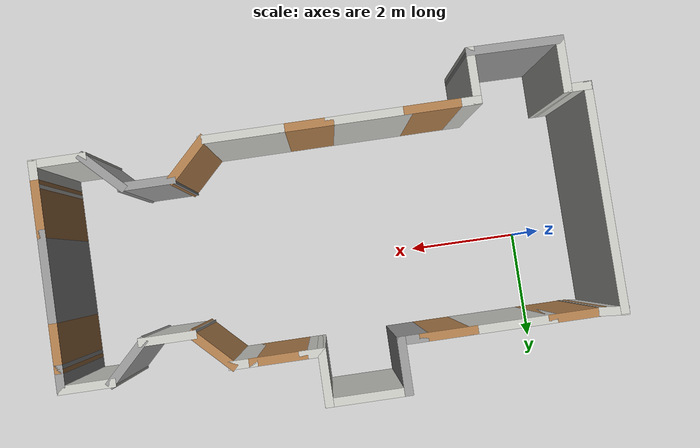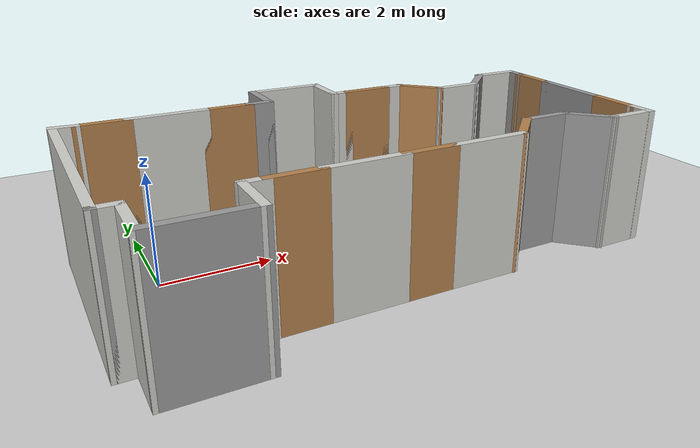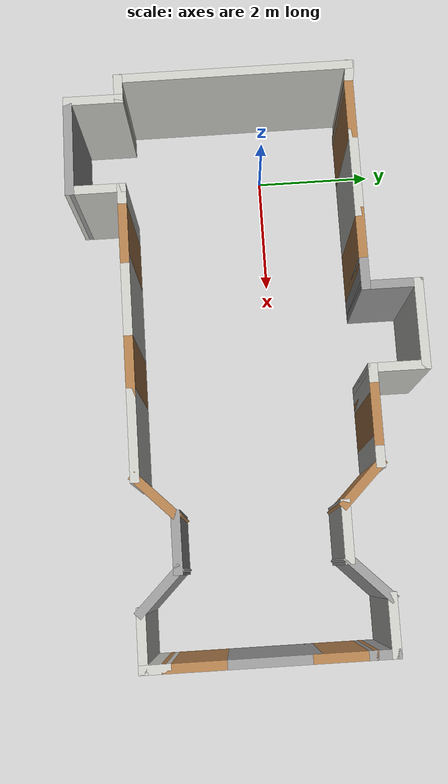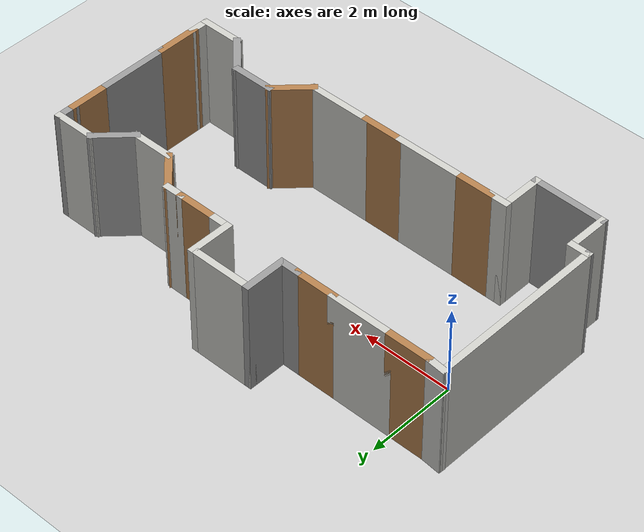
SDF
<sdf version="1.6">
 <world name="default">
  <light name="sun" type="directional">
   <pose>0 0 10 0 -0 0</pose>
   <diffuse>0.8 0.8 0.8 1</diffuse>
   <specular>0.2 0.2 0.2 1</specular>
   <attenuation>
    <range>1000</range>
    <constant>0.9</constant>
    <linear>0.01</linear>
    <quadratic>0.001</quadratic>
   </attenuation>
   <direction>-0.5 0.1 -0.9</direction>
  </light>
  <model name="ground_plane">
   <static>1</static>
   <link name="link">
    <collision name="collision">
     <geometry><plane><normal>0 0 1</normal><size>100 100</size></plane></geometry>
     <surface>
      <contact><collide_bitmask>65535</collide_bitmask></contact>
      <friction><ode><mu>100</mu><mu2>50</mu2></ode></friction>
     </surface>
    </collision>
    <visual name="visual">
     <cast_shadows>0</cast_shadows>
     <geometry><plane><normal>0 0 1</normal><size>100 100</size></plane></geometry>
     <material>
      <script><uri>file://media/materials/scripts/gazebo.material</uri><name>Gazebo/Grey</name></script>
     </material>
    </visual>
   </link>
  </model>
  <gravity>0 0 -9.8</gravity>
  <magnetic_field>6e-06 2.3e-05 -4.2e-05</magnetic_field>
  <atmosphere type="adiabatic"/>
  <physics name="default_physics" default="0" type="ode">
   <max_step_size>0.001</max_step_size>
   <real_time_factor>1</real_time_factor>
   <real_time_update_rate>1000</real_time_update_rate>
  </physics>
  <scene><ambient>0.4 0.4 0.4 1</ambient><background>0.7 0.7 0.7 1</background><shadows>1</shadows></scene>
  <audio><device>default</device></audio>
  <spherical_coordinates>
   <surface_model>EARTH_WGS84</surface_model>
   <latitude_deg>0</latitude_deg>
   <longitude_deg>0</longitude_deg>
   <elevation>0</elevation>
   <heading_deg>0</heading_deg>
  </spherical_coordinates>
  <model name="ground_floor">
   <pose>3.65133 -0.424417 0 0 -0 0</pose>
   <link name="Wall_0">
    <collision name="Wall_0_Collision">
     <geometry><box><size>4.00005 0.15 2.5</size></box></geometry>
     <pose>0 0 1.25 0 -0 0</pose>
    </collision>
    <visual name="Wall_0_Visual">
     <pose>0 0 1.25 0 -0 0</pose>
     <geometry><box><size>4.00005 0.15 2.5</size></box></geometry>
     <material>
      <script><uri>file://media/materials/scripts/gazebo.material</uri><name>Gazebo/CeilingTiled</name></script>
      <ambient>1 1 1 1</ambient>
     </material>
     <meta><layer>0</layer></meta>
    </visual>
    <pose>-4.77273 0.017749 0 0 -0 1.5752</pose>
   </link>
   <link name="Wall_10">
    <collision name="Wall_10_Collision">
     <geometry><box><size>0.46502 0.15 2.5</size></box></geometry>
     <pose>0 0 1.25 0 -0 0</pose>
    </collision>
    <visual name="Wall_10_Visual">
     <pose>0 0 1.25 0 -0 0</pose>
     <geometry><box><size>0.46502 0.15 2.5</size></box></geometry>
     <material>
      <script><uri>file://media/materials/scripts/gazebo.material</uri><name>Gazebo/CeilingTiled</name></script>
      <ambient>1 1 1 1</ambient>
     </material>
     <meta><layer>0</layer></meta>
    </visual>
    <pose>0.52816 1.92542 0 0 -0 0</pose>
   </link>
   <link name="Wall_11">
    <collision name="Wall_11_Collision">
     <geometry><box><size>1 0.15 2.5</size></box></geometry>
     <pose>0 0 1.25 0 -0 0</pose>
    </collision>
    <visual name="Wall_11_Visual">
     <pose>0 0 1.25 0 -0 0</pose>
     <geometry><box><size>1 0.15 2.5</size></box></geometry>
     <material>
      <script><uri>file://media/materials/scripts/gazebo.material</uri><name>Gazebo/Wood</name></script>
      <ambient>1 1 1 1</ambient>
     </material>
     <meta><layer>0</layer></meta>
    </visual>
    <pose>1.11067 1.92542 0 0 -0 0</pose>
   </link>
   <link name="Wall_12">
    <collision name="Wall_12_Collision">
     <geometry><box><size>0.5 0.15 2.5</size></box></geometry>
     <pose>0 0 1.25 0 -0 0</pose>
    </collision>
    <visual name="Wall_12_Visual">
     <pose>0 0 1.25 0 -0 0</pose>
     <geometry><box><size>0.5 0.15 2.5</size></box></geometry>
     <material>
      <script><uri>file://media/materials/scripts/gazebo.material</uri><name>Gazebo/CeilingTiled</name></script>
      <ambient>1 1 1 1</ambient>
     </material>
     <meta><layer>0</layer></meta>
    </visual>
    <pose>1.71067 1.92542 0 0 -0 0</pose>
   </link>
   <link name="Wall_13">
    <collision name="Wall_13_Collision">
     <geometry><box><size>1 0.15 2.5</size></box></geometry>
     <pose>0 0 1.25 0 -0 0</pose>
    </collision>
    <visual name="Wall_13_Visual">
     <pose>0 0 1.25 0 -0 0</pose>
     <geometry><box><size>1 0.15 2.5</size></box></geometry>
     <material>
      <script><uri>file://media/materials/scripts/gazebo.material</uri><name>Gazebo/Wood</name></script>
      <ambient>1 1 1 1</ambient>
     </material>
     <meta><layer>0</layer></meta>
    </visual>
    <pose>2.18617 1.62492 0 0 -0 -0.785398</pose>
   </link>
   <link name="Wall_14">
    <collision name="Wall_14_Collision">
     <geometry><box><size>1 0.15 2.5</size></box></geometry>
     <pose>0 0 1.25 0 -0 0</pose>
    </collision>
    <visual name="Wall_14_Visual">
     <pose>0 0 1.25 0 -0 0</pose>
     <geometry><box><size>1 0.15 2.5</size></box></geometry>
     <material>
      <script><uri>file://media/materials/scripts/gazebo.material</uri><name>Gazebo/CeilingTiled</name></script>
      <ambient>1 1 1 1</ambient>
     </material>
     <meta><layer>0</layer></meta>
    </visual>
    <pose>2.91183 1.32433 0 0 -0 -0.000206</pose>
   </link>
   <link name="Wall_15">
    <collision name="Wall_15_Collision">
     <geometry><box><size>1 0.15 2.5</size></box></geometry>
     <pose>0 0 1.25 0 -0 0</pose>
    </collision>
    <visual name="Wall_15_Visual">
     <pose>0 0 1.25 0 -0 0</pose>
     <geometry><box><size>1 0.15 2.5</size></box></geometry>
     <material>
      <script><uri>file://media/materials/scripts/gazebo.material</uri><name>Gazebo/Grey</name></script>
      <ambient>1 1 1 1</ambient>
     </material>
     <meta><layer>0</layer></meta>
    </visual>
    <pose>3.63752 1.62476 0 0 -0 0.785398</pose>
   </link>
   <link name="Wall_16">
    <collision name="Wall_16_Collision">
     <geometry><box><size>1 0.15 2.5</size></box></geometry>
     <pose>0 0 1.25 0 -0 0</pose>
    </collision>
    <visual name="Wall_16_Visual">
     <pose>0 0 1.25 0 -0 0</pose>
     <geometry><box><size>1 0.15 2.5</size></box></geometry>
     <material>
      <script><uri>file://media/materials/scripts/gazebo.material</uri><name>Gazebo/CeilingTiled</name></script>
      <ambient>1 1 1 1</ambient>
     </material>
     <meta><layer>0</layer></meta>
    </visual>
    <pose>4.36304 1.92528 0 0 -0 0</pose>
   </link>
   <link name="Wall_18">
    <collision name="Wall_18_Collision">
     <geometry><box><size>1 0.15 2.5</size></box></geometry>
     <pose>0 0 1.25 0 -0 0</pose>
    </collision>
    <visual name="Wall_18_Visual">
     <pose>0 0 1.25 0 -0 0</pose>
     <geometry><box><size>1 0.15 2.5</size></box></geometry>
     <material>
      <script><uri>file://media/materials/scripts/gazebo.material</uri><name>Gazebo/CeilingTiled</name></script>
      <ambient>1 1 1 1</ambient>
     </material>
     <meta><layer>0</layer></meta>
    </visual>
    <pose>4.36304 -1.92472 0 0 -0 3.14159</pose>
   </link>
   <link name="Wall_19">
    <collision name="Wall_19_Collision">
     <geometry><box><size>1 0.15 2.5</size></box></geometry>
     <pose>0 0 1.25 0 -0 0</pose>
    </collision>
    <visual name="Wall_19_Visual">
     <pose>0 0 1.25 0 -0 0</pose>
     <geometry><box><size>1 0.15 2.5</size></box></geometry>
     <material>
      <script><uri>file://media/materials/scripts/gazebo.material</uri><name>Gazebo/Grey</name></script>
      <ambient>1 1 1 1</ambient>
     </material>
     <meta><layer>0</layer></meta>
    </visual>
    <pose>3.63752 -1.6242 0 0 -0 2.35619</pose>
   </link>
   <link name="Wall_20">
    <collision name="Wall_20_Collision">
     <geometry><box><size>1 0.15 2.5</size></box></geometry>
     <pose>0 0 1.25 0 -0 0</pose>
    </collision>
    <visual name="Wall_20_Visual">
     <pose>0 0 1.25 0 -0 0</pose>
     <geometry><box><size>1 0.15 2.5</size></box></geometry>
     <material>
      <script><uri>file://media/materials/scripts/gazebo.material</uri><name>Gazebo/Grey</name></script>
      <ambient>1 1 1 1</ambient>
     </material>
     <meta><layer>0</layer></meta>
    </visual>
    <pose>2.91183 -1.32363 0 0 -0 3.14148</pose>
   </link>
   <link name="Wall_28">
    <collision name="Wall_28_Collision">
     <geometry><box><size>1 0.15 2.5</size></box></geometry>
     <pose>0 0 1.25 0 -0 0</pose>
    </collision>
    <visual name="Wall_28_Visual">
     <pose>0 0 1.25 0 -0 0</pose>
     <geometry><box><size>1 0.15 2.5</size></box></geometry>
     <material>
      <script><uri>file://media/materials/scripts/gazebo.material</uri><name>Gazebo/Wood</name></script>
      <ambient>1 1 1 1</ambient>
     </material>
     <meta><layer>0</layer></meta>
    </visual>
    <pose>2.18617 -1.62408 0 0 -0 -2.35619</pose>
   </link>
   <link name="Wall_29">
    <collision name="Wall_29_Collision">
     <geometry><box><size>1.5 0.15 2.5</size></box></geometry>
     <pose>0 0 1.25 0 -0 0</pose>
    </collision>
    <visual name="Wall_29_Visual">
     <pose>0 0 1.25 0 -0 0</pose>
     <geometry><box><size>1.5 0.15 2.5</size></box></geometry>
     <material>
      <script><uri>file://media/materials/scripts/gazebo.material</uri><name>Gazebo/CeilingTiled</name></script>
      <ambient>1 1 1 1</ambient>
     </material>
     <meta><layer>0</layer></meta>
    </visual>
    <pose>1.21067 -1.92458 0 0 -0 3.14159</pose>
   </link>
   <link name="Wall_30">
    <collision name="Wall_30_Collision">
     <geometry><box><size>1 0.15 2.5</size></box></geometry>
     <pose>0 0 1.25 0 -0 0</pose>
    </collision>
    <visual name="Wall_30_Visual">
     <pose>0 0 1.25 0 -0 0</pose>
     <geometry><box><size>1 0.15 2.5</size></box></geometry>
     <material>
      <script><uri>file://media/materials/scripts/gazebo.material</uri><name>Gazebo/Wood</name></script>
      <ambient>1 1 1 1</ambient>
     </material>
     <meta><layer>0</layer></meta>
    </visual>
    <pose>0.11067 -1.92458 0 0 -0 3.14159</pose>
   </link>
   <link name="Wall_31">
    <collision name="Wall_31_Collision">
     <geometry><box><size>1.5 0.15 2.5</size></box></geometry>
     <pose>0 0 1.25 0 -0 0</pose>
    </collision>
    <visual name="Wall_31_Visual">
     <pose>0 0 1.25 0 -0 0</pose>
     <geometry><box><size>1.5 0.15 2.5</size></box></geometry>
     <material>
      <script><uri>file://media/materials/scripts/gazebo.material</uri><name>Gazebo/CeilingTiled</name></script>
      <ambient>1 1 1 1</ambient>
     </material>
     <meta><layer>0</layer></meta>
    </visual>
    <pose>-0.98933 -1.92458 0 0 -0 3.14159</pose>
   </link>
   <link name="Wall_32">
    <collision name="Wall_32_Collision">
     <geometry><box><size>1 0.15 2.5</size></box></geometry>
     <pose>0 0 1.25 0 -0 0</pose>
    </collision>
    <visual name="Wall_32_Visual">
     <pose>0 0 1.25 0 -0 0</pose>
     <geometry><box><size>1 0.15 2.5</size></box></geometry>
     <material>
      <script><uri>file://media/materials/scripts/gazebo.material</uri><name>Gazebo/Wood</name></script>
      <ambient>1 1 1 1</ambient>
     </material>
     <meta><layer>0</layer></meta>
    </visual>
    <pose>-2.08933 -1.92458 0 0 -0 3.14159</pose>
   </link>
   <link name="Wall_36">
    <collision name="Wall_36_Collision">
     <geometry><box><size>0.5 0.15 2.5</size></box></geometry>
     <pose>0 0 1.25 0 -0 0</pose>
    </collision>
    <visual name="Wall_36_Visual">
     <pose>0 0 1.25 0 -0 0</pose>
     <geometry><box><size>0.5 0.15 2.5</size></box></geometry>
     <material>
      <script><uri>file://media/materials/scripts/gazebo.material</uri><name>Gazebo/Grey</name></script>
      <ambient>1 1 1 1</ambient>
     </material>
     <meta><layer>0</layer></meta>
    </visual>
    <pose>4.78786 1.75035 0 0 -0 -1.57186</pose>
   </link>
   <link name="Wall_37">
    <collision name="Wall_37_Collision">
     <geometry><box><size>1 0.15 2.5</size></box></geometry>
     <pose>0 0 1.25 0 -0 0</pose>
    </collision>
    <visual name="Wall_37_Visual">
     <pose>0 0 1.25 0 -0 0</pose>
     <geometry><box><size>1 0.15 2.5</size></box></geometry>
     <material>
      <script><uri>file://media/materials/scripts/gazebo.material</uri><name>Gazebo/Wood</name></script>
      <ambient>1 1 1 1</ambient>
     </material>
     <meta><layer>0</layer></meta>
    </visual>
    <pose>4.78767 1.15042 0 0 -0 -1.5708</pose>
   </link>
   <link name="Wall_39">
    <collision name="Wall_39_Collision">
     <geometry><box><size>0.5 0.15 2.5</size></box></geometry>
     <pose>0 0 1.25 0 -0 0</pose>
    </collision>
    <visual name="Wall_39_Visual">
     <pose>0 0 1.25 0 -0 0</pose>
     <geometry><box><size>0.5 0.15 2.5</size></box></geometry>
     <material>
      <script><uri>file://media/materials/scripts/gazebo.material</uri><name>Gazebo/CeilingTiled</name></script>
      <ambient>1 1 1 1</ambient>
     </material>
     <meta><layer>0</layer></meta>
    </visual>
    <pose>4.78786 -1.74965 0 0 -0 1.57186</pose>
   </link>
   <link name="Wall_4">
    <collision name="Wall_4_Collision">
     <geometry><box><size>0.518838 0.15 2.5</size></box></geometry>
     <pose>0 0 1.25 0 -0 0</pose>
    </collision>
    <visual name="Wall_4_Visual">
     <pose>0 0 1.25 0 -0 0</pose>
     <geometry><box><size>0.518838 0.15 2.5</size></box></geometry>
     <material>
      <script><uri>file://media/materials/scripts/gazebo.material</uri><name>Gazebo/CeilingTiled</name></script>
      <ambient>1 1 1 1</ambient>
     </material>
     <meta><layer>0</layer></meta>
    </visual>
    <pose>-4.59777 1.94283 0 0 -0 -0.094641</pose>
   </link>
   <link name="Wall_40">
    <collision name="Wall_40_Collision">
     <geometry><box><size>1 0.15 2.5</size></box></geometry>
     <pose>0 0 1.25 0 -0 0</pose>
    </collision>
    <visual name="Wall_40_Visual">
     <pose>0 0 1.25 0 -0 0</pose>
     <geometry><box><size>1 0.15 2.5</size></box></geometry>
     <material>
      <script><uri>file://media/materials/scripts/gazebo.material</uri><name>Gazebo/Wood</name></script>
      <ambient>1 1 1 1</ambient>
     </material>
     <meta><layer>0</layer></meta>
    </visual>
    <pose>4.78767 -1.14958 0 0 -0 1.5708</pose>
   </link>
   <link name="Wall_41">
    <collision name="Wall_41_Collision">
     <geometry><box><size>1.6 0.15 2.5</size></box></geometry>
     <pose>0 0 1.25 0 -0 0</pose>
    </collision>
    <visual name="Wall_41_Visual">
     <pose>0 0 1.25 0 -0 0</pose>
     <geometry><box><size>1.6 0.15 2.5</size></box></geometry>
     <material>
      <script><uri>file://media/materials/scripts/gazebo.material</uri><name>Gazebo/Grey</name></script>
      <ambient>1 1 1 1</ambient>
     </material>
     <meta><layer>0</layer></meta>
    </visual>
    <pose>4.78767 0.000417 0 0 -0 1.5708</pose>
   </link>
   <link name="Wall_44">
    <collision name="Wall_44_Collision">
     <geometry><box><size>1 0.15 2.5</size></box></geometry>
     <pose>0 0 1.25 0 -0 0</pose>
    </collision>
    <visual name="Wall_44_Visual">
     <pose>0 0 1.25 0 -0 0</pose>
     <geometry><box><size>1 0.15 2.5</size></box></geometry>
     <material>
      <script><uri>file://media/materials/scripts/gazebo.material</uri><name>Gazebo/Grey</name></script>
      <ambient>1 1 1 1</ambient>
     </material>
     <meta><layer>0</layer></meta>
    </visual>
    <pose>-0.97935 2.35042 0 0 -0 1.5708</pose>
   </link>
   <link name="Wall_45">
    <collision name="Wall_45_Collision">
     <geometry><box><size>1.5 0.15 2.5</size></box></geometry>
     <pose>0 0 1.25 0 -0 0</pose>
    </collision>
    <visual name="Wall_45_Visual">
     <pose>0 0 1.25 0 -0 0</pose>
     <geometry><box><size>1.5 0.15 2.5</size></box></geometry>
     <material>
      <script><uri>file://media/materials/scripts/gazebo.material</uri><name>Gazebo/CeilingTiled</name></script>
      <ambient>0.827451 0.843137 0.811765 1</ambient>
     </material>
     <meta><layer>0</layer></meta>
    </visual>
    <pose>-0.30435 2.77542 0 0 -0 0</pose>
   </link>
   <link name="Wall_46">
    <collision name="Wall_46_Collision">
     <geometry><box><size>1 0.15 2.5</size></box></geometry>
     <pose>0 0 1.25 0 -0 0</pose>
    </collision>
    <visual name="Wall_46_Visual">
     <pose>0 0 1.25 0 -0 0</pose>
     <geometry><box><size>1 0.15 2.5</size></box></geometry>
     <material>
      <script><uri>file://media/materials/scripts/gazebo.material</uri><name>Gazebo/CeilingTiled</name></script>
      <ambient>1 1 1 1</ambient>
     </material>
     <meta><layer>0</layer></meta>
    </visual>
    <pose>0.37065 2.35042 0 0 -0 -1.5708</pose>
   </link>
   <link name="Wall_48">
    <collision name="Wall_48_Collision">
     <geometry><box><size>0.15 0.15 2.5</size></box></geometry>
     <pose>0 0 1.25 0 -0 0</pose>
    </collision>
    <visual name="Wall_48_Visual">
     <pose>0 0 1.25 0 -0 0</pose>
     <geometry><box><size>0.15 0.15 2.5</size></box></geometry>
     <material>
      <script><uri>file://media/materials/scripts/gazebo.material</uri><name>Gazebo/Grey</name></script>
      <ambient>1 1 1 1</ambient>
     </material>
     <meta><layer>0</layer></meta>
    </visual>
    <pose>-4.76425 -1.90725 0 0 -0 0</pose>
   </link>
   <link name="Wall_49">
    <collision name="Wall_49_Collision">
     <geometry><box><size>0.5 0.15 2.5</size></box></geometry>
     <pose>0 0 1.25 0 -0 0</pose>
    </collision>
    <visual name="Wall_49_Visual">
     <pose>0 0 1.25 0 -0 0</pose>
     <geometry><box><size>0.5 0.15 2.5</size></box></geometry>
     <material>
      <script><uri>file://media/materials/scripts/gazebo.material</uri><name>Gazebo/CeilingTiled</name></script>
      <ambient>1 1 1 1</ambient>
     </material>
     <meta><layer>0</layer></meta>
    </visual>
    <pose>-4.58925 -1.90725 0 0 -0 0</pose>
   </link>
   <link name="Wall_5">
    <collision name="Wall_5_Collision">
     <geometry><box><size>1 0.15 2.5</size></box></geometry>
     <pose>0 0 1.25 0 -0 0</pose>
    </collision>
    <visual name="Wall_5_Visual">
     <pose>0 0 1.25 0 -0 0</pose>
     <geometry><box><size>1 0.15 2.5</size></box></geometry>
     <material>
      <script><uri>file://media/materials/scripts/gazebo.material</uri><name>Gazebo/Wood</name></script>
      <ambient>1 1 1 1</ambient>
     </material>
     <meta><layer>0</layer></meta>
    </visual>
    <pose>-3.98933 1.92542 0 0 -0 0</pose>
   </link>
   <link name="Wall_50">
    <collision name="Wall_50_Collision">
     <geometry><box><size>1 0.15 2.5</size></box></geometry>
     <pose>0 0 1.25 0 -0 0</pose>
    </collision>
    <visual name="Wall_50_Visual">
     <pose>0 0 1.25 0 -0 0</pose>
     <geometry><box><size>1 0.15 2.5</size></box></geometry>
     <material>
      <script><uri>file://media/materials/scripts/gazebo.material</uri><name>Gazebo/CeilingTiled</name></script>
      <ambient>1 1 1 1</ambient>
     </material>
     <meta><layer>0</layer></meta>
    </visual>
    <pose>-4.41425 -2.33225 0 0 -0 -1.5708</pose>
   </link>
   <link name="Wall_53">
    <collision name="Wall_53_Collision">
     <geometry><box><size>0.5 0.15 2.5</size></box></geometry>
     <pose>0 0 1.25 0 -0 0</pose>
    </collision>
    <visual name="Wall_53_Visual">
     <pose>0 0 1.25 0 -0 0</pose>
     <geometry><box><size>0.5 0.15 2.5</size></box></geometry>
     <material>
      <script><uri>file://media/materials/scripts/gazebo.material</uri><name>Gazebo/CeilingTiled</name></script>
      <ambient>1 1 1 1</ambient>
     </material>
     <meta><layer>0</layer></meta>
    </visual>
    <pose>-2.68933 -1.92458 0 0 -0 3.14159</pose>
   </link>
   <link name="Wall_56">
    <collision name="Wall_56_Collision">
     <geometry><box><size>1 0.15 2.5</size></box></geometry>
     <pose>0 0 1.25 0 -0 0</pose>
    </collision>
    <visual name="Wall_56_Visual">
     <pose>0 0 1.25 0 -0 0</pose>
     <geometry><box><size>1 0.15 2.5</size></box></geometry>
     <material>
      <script><uri>file://media/materials/scripts/gazebo.material</uri><name>Gazebo/CeilingTiled</name></script>
      <ambient>1 1 1 1</ambient>
     </material>
     <meta><layer>0</layer></meta>
    </visual>
    <pose>-2.86433 -2.34958 0 0 -0 -1.5708</pose>
   </link>
   <link name="Wall_57">
    <collision name="Wall_57_Collision">
     <geometry><box><size>1.70002 0.15 2.5</size></box></geometry>
     <pose>0 0 1.25 0 -0 0</pose>
    </collision>
    <visual name="Wall_57_Visual">
     <pose>0 0 1.25 0 -0 0</pose>
     <geometry><box><size>1.70002 0.15 2.5</size></box></geometry>
     <material>
      <script><uri>file://media/materials/scripts/gazebo.material</uri><name>Gazebo/Grey</name></script>
      <ambient>0.827451 0.843137 0.811765 1</ambient>
     </material>
     <meta><layer>0</layer></meta>
    </visual>
    <pose>-3.63929 -2.76592 0 0 -0 3.13041</pose>
   </link>
   <link name="Wall_6">
    <collision name="Wall_6_Collision">
     <geometry><box><size>1.49971 0.15 2.5</size></box></geometry>
     <pose>0 0 1.25 0 -0 0</pose>
    </collision>
    <visual name="Wall_6_Visual">
     <pose>0 0 1.25 0 -0 0</pose>
     <geometry><box><size>1.49971 0.15 2.5</size></box></geometry>
     <material>
      <script><uri>file://media/materials/scripts/gazebo.material</uri><name>Gazebo/CeilingTiled</name></script>
      <ambient>1 1 1 1</ambient>
     </material>
     <meta><layer>0</layer></meta>
    </visual>
    <pose>-2.88933 1.92542 0 0 -0 0</pose>
   </link>
   <link name="Wall_7">
    <collision name="Wall_7_Collision">
     <geometry><box><size>1 0.15 2.5</size></box></geometry>
     <pose>0 0 1.25 0 -0 0</pose>
    </collision>
    <visual name="Wall_7_Visual">
     <pose>0 0 1.25 0 -0 0</pose>
     <geometry><box><size>1 0.15 2.5</size></box></geometry>
     <material>
      <script><uri>file://media/materials/scripts/gazebo.material</uri><name>Gazebo/Wood</name></script>
      <ambient>1 1 1 1</ambient>
     </material>
     <meta><layer>0</layer></meta>
    </visual>
    <pose>-1.78933 1.92542 0 0 -0 0</pose>
   </link>
   <link name="Wall_8">
    <collision name="Wall_8_Collision">
     <geometry><box><size>0.53498 0.15 2.5</size></box></geometry>
     <pose>0 0 1.25 0 -0 0</pose>
    </collision>
    <visual name="Wall_8_Visual">
     <pose>0 0 1.25 0 -0 0</pose>
     <geometry><box><size>0.53498 0.15 2.5</size></box></geometry>
     <material>
      <script><uri>file://media/materials/scripts/gazebo.material</uri><name>Gazebo/Grey</name></script>
      <ambient>1 1 1 1</ambient>
     </material>
     <meta><layer>0</layer></meta>
    </visual>
    <pose>-1.17184 1.92542 0 0 -0 0</pose>
   </link>
   <static>1</static>
  </model>
 </world>
</sdf>
